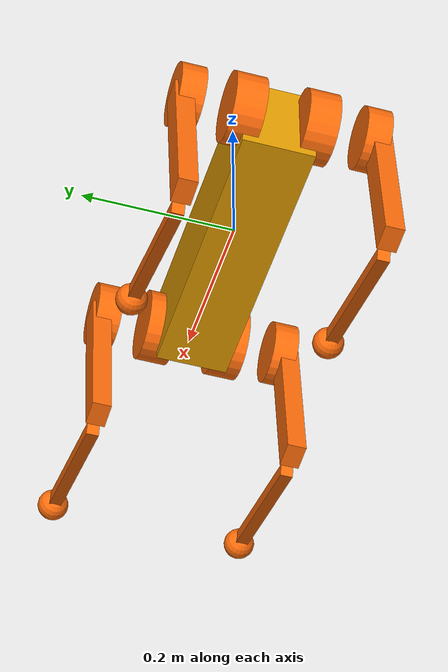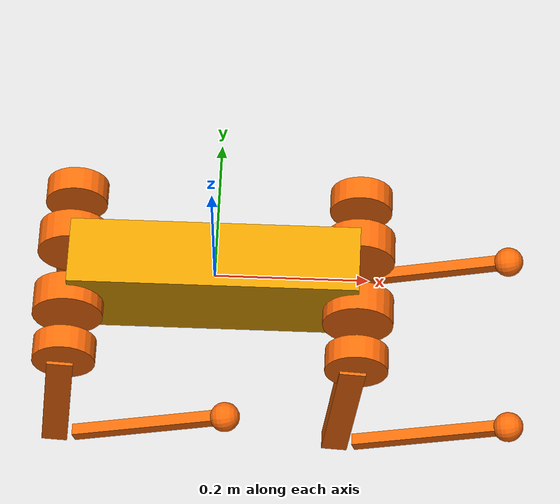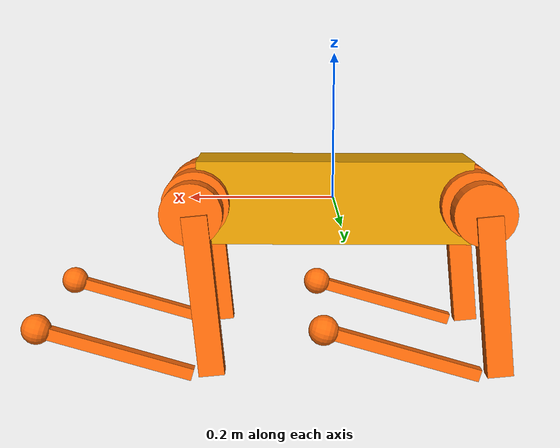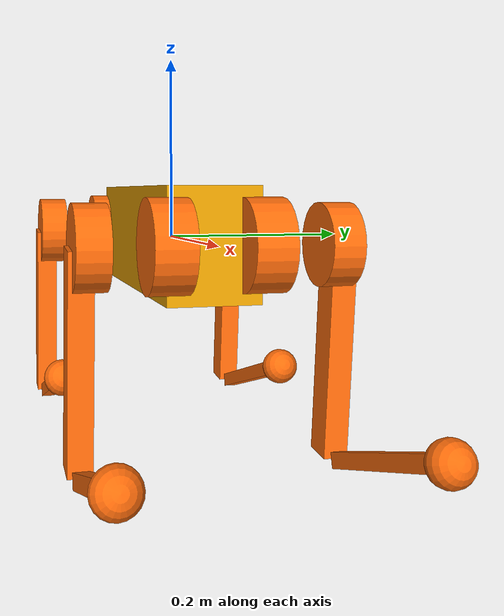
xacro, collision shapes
<?xml version="1.0"?>

<robot xmlns:xacro="http://www.ros.org/wiki/xacro" name="robot">

    <xacro:arg name="robot_type" default="go1"/>

    <xacro:include filename="./common/materials.xacro"/>
    <xacro:include filename="./common/leg.xacro"/>
    <xacro:include filename="./common/gazebo.xacro"/>
    <xacro:include filename="./common/imu.xacro"/>

    <xacro:include filename="./go1/const.xacro"/>

    <xacro:property name="mesh_path" value="../meshes"/>

    <link name="base">
        <visual>
            <origin rpy="0 0 0" xyz="0 0 0"/>
            <geometry>
                <mesh filename="${mesh_path}/trunk.stl" scale="1 1 1"/>
            </geometry>
        </visual>
        <collision>
            <origin rpy="0 0 0" xyz="0 0 0"/>
            <geometry>
                <box size="${trunk_length} ${trunk_width} ${trunk_height}"/>
            </geometry>
        </collision>
        <inertial>
            <origin rpy="0 0 0" xyz="${trunk_com_x} ${trunk_com_y} ${trunk_com_z}"/>
            <mass value="${trunk_mass}"/>
            <inertia
                    ixx="${trunk_ixx}" ixy="${trunk_ixy}" ixz="${trunk_ixz}"
                    iyy="${trunk_iyy}" iyz="${trunk_iyz}"
                    izz="${trunk_izz}"/>
        </inertial>
    </link>

    <xacro:IMU connected_to="base" imu_name="imu" xyz="0. 0. 0." rpy="0. 0. 0."/>

    <xacro:leg prefix="FL" mesh_path="${mesh_path}" mirror="1" mirror_dae="True" front_hind="1" front_hind_dae="True">
        <origin rpy="0 0 0" xyz="${leg_offset_x} ${leg_offset_y} 0"/>
    </xacro:leg>

    <xacro:leg prefix="RL" mesh_path="${mesh_path}" mirror="1" mirror_dae="True" front_hind="-1" front_hind_dae="False">
        <origin rpy="0 0 0" xyz="${-leg_offset_x} ${leg_offset_y} 0"/>
    </xacro:leg>

    <xacro:leg prefix="FR" mesh_path="${mesh_path}" mirror="-1" mirror_dae="False" front_hind="1" front_hind_dae="True">
        <origin rpy="0 0 0" xyz="${leg_offset_x} ${-leg_offset_y} 0"/>
    </xacro:leg>

    <xacro:leg prefix="RR" mesh_path="${mesh_path}" mirror="-1" mirror_dae="False" front_hind="-1" front_hind_dae="False">
        <origin rpy="0 0 0" xyz="${-leg_offset_x} ${-leg_offset_y} 0"/>
    </xacro:leg>

</robot>

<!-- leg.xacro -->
<robot xmlns:xacro="http://www.ros.org/wiki/xacro">

    <xacro:include filename="$(find legged_unitree_description)/urdf/common/transmission.xacro"/>

    <xacro:macro name="leg" params="prefix mesh_path mirror mirror_dae front_hind front_hind_dae *origin">

        <joint name="${prefix}_hip_joint" type="revolute">
            <xacro:insert_block name="origin"/>
            <parent link="base"/>
            <child link="${prefix}_hip"/>
            <axis xyz="1 0 0"/>
            <dynamics damping="${damping}" friction="${friction}"/>
            <xacro:if value="${(mirror_dae == True)}">
                <limit effort="${hip_torque_max}" velocity="${hip_velocity_max}" lower="${hip_position_min}"
                       upper="${hip_position_max}"/>
            </xacro:if>
            <xacro:if value="${(mirror_dae == False)}">
                <limit effort="${hip_torque_max}" velocity="${hip_velocity_max}" lower="${-hip_position_max}"
                       upper="${-hip_position_min}"/>
            </xacro:if>
        </joint>

        <link name="${prefix}_hip">
            <visual>
                <xacro:if value="${(mirror_dae == True) and (front_hind_dae == True)}">
                    <origin rpy="0 0 0" xyz="0 0 0"/>
                </xacro:if>
                <xacro:if value="${(mirror_dae == False) and (front_hind_dae == True)}">
                    <origin rpy="${pi} 0 0" xyz="0 0 0"/>
                </xacro:if>
                <xacro:if value="${(mirror_dae == True) and (front_hind_dae == False)}">
                    <origin rpy="0 ${pi} 0" xyz="0 0 0"/>
                </xacro:if>
                <xacro:if value="${(mirror_dae == False) and (front_hind_dae == False)}">
                    <origin rpy="${pi} ${pi} 0" xyz="0 0 0"/>
                </xacro:if>
                <geometry>
                    <mesh filename="${mesh_path}/hip.stl"
                          scale="1 1 1"/>
                </geometry>
                <material name="orange"/>
            </visual>
            <collision>
                <origin rpy="${pi/2.0} 0 0" xyz="0 0 0"/>
                <geometry>
                    <cylinder length="${hip_length}" radius="${hip_radius}"/>
                </geometry>
            </collision>
            <inertial>
                <origin rpy="0 0 0" xyz="${hip_com_x*front_hind} ${hip_com_y*mirror} ${hip_com_z}"/>
                <mass value="${hip_mass}"/>
                <inertia
                        ixx="${hip_ixx}" ixy="${hip_ixy*mirror*front_hind}" ixz="${hip_ixz*front_hind}"
                        iyy="${hip_iyy}" iyz="${hip_iyz*mirror}"
                        izz="${hip_izz}"/>
            </inertial>
        </link>

        <joint name="${prefix}_thigh_joint" type="revolute">
            <origin rpy="0 0 0" xyz="0 ${thigh_offset*mirror} 0"/>
            <parent link="${prefix}_hip"/>
            <child link="${prefix}_thigh"/>
            <axis xyz="0 1 0"/>
            <dynamics damping="${damping}" friction="${friction}"/>
            <limit effort="${thigh_torque_max}" velocity="${thigh_velocity_max}" lower="${thigh_position_min}"
                   upper="${thigh_position_max}"/>
        </joint>

        <link name="${prefix}_thigh">
            <visual>
                <origin rpy="0 0 0" xyz="0 0 0"/>
                <geometry>
                    <xacro:if value="${mirror_dae == True}">
                        <mesh filename="${mesh_path}/thigh.stl"
                              scale="1 1 1"/>
                    </xacro:if>
                    <xacro:if value="${mirror_dae == False}">
                        <mesh filename="${mesh_path}/thigh_mirror.stl"
                              scale="1 1 1"/>
                    </xacro:if>
                </geometry>
                <material name="orange"/>
            </visual>
            <collision>
                <origin rpy="0 ${pi/2.0+0.1} 0" xyz="${thigh_x_offset} 0 ${-thigh_length/2.0}"/>
                <geometry>
                    <box size="${thigh_length} ${thigh_width} ${thigh_height}"/>
                </geometry>
            </collision>
            <collision>
                <origin rpy="${pi/2.0} 0 0" xyz="0 ${mirror*thigh_shoulder_y_offset} 0"/>
                <geometry>
                    <cylinder length="${thigh_shoulder_length}" radius="${thigh_shoulder_radius}"/>
                </geometry>
            </collision>
            <inertial>
                <origin rpy="0 0 0" xyz="${thigh_com_x} ${thigh_com_y*mirror} ${thigh_com_z}"/>
                <mass value="${thigh_mass}"/>
                <inertia
                        ixx="${thigh_ixx}" ixy="${thigh_ixy*mirror}" ixz="${thigh_ixz}"
                        iyy="${thigh_iyy}" iyz="${thigh_iyz*mirror}"
                        izz="${thigh_izz}"/>
            </inertial>
        </link>

        <joint name="${prefix}_calf_joint" type="revolute">
            <origin rpy="0 0 0" xyz="0 0 ${-thigh_length}"/>
            <parent link="${prefix}_thigh"/>
            <child link="${prefix}_calf"/>
            <axis xyz="0 1 0"/>
            <dynamics damping="${damping}" friction="${friction}"/>
            <limit effort="${calf_torque_max}" velocity="${calf_velocity_max}" lower="${calf_position_min}" upper="${calf_position_max}"/>
        </joint>

        <link name="${prefix}_calf">
            <visual>
                <origin rpy="0 0 0" xyz="0 0 0"/>
                <geometry>
                    <mesh filename="${mesh_path}/calf.stl"
                          scale="1 1 1"/>
                </geometry>
                <material name="orange"/>
            </visual>
            <collision>
                <origin rpy="0 ${pi/2.0} 0" xyz="${calf_x_offset} 0 ${-calf_length/2.0}"/>
                <geometry>
                    <box size="${calf_length} ${calf_width} ${calf_height}"/>
                </geometry>
            </collision>
            <inertial>
                <origin rpy="0 0 0" xyz="${calf_com_x} ${calf_com_y} ${calf_com_z}"/>
                <mass value="${calf_mass}"/>
                <inertia
                        ixx="${calf_ixx}" ixy="${calf_ixy}" ixz="${calf_ixz}"
                        iyy="${calf_iyy}" iyz="${calf_iyz}"
                        izz="${calf_izz}"/>
            </inertial>
        </link>

        <joint name="${prefix}_foot_fixed" type="fixed" dont_collapse="true">
            <origin rpy="0 0 0" xyz="0 0 ${-(calf_length)}"/>
            <parent link="${prefix}_calf"/>
            <child link="${prefix}_foot"/>
        </joint>

        <link name="${prefix}_foot">
            <visual>
                <origin rpy="0 0 0" xyz="0 0 0"/>
                <geometry>
                    <sphere radius="${foot_radius-0.01}"/>
                </geometry>
                <material name="orange"/>
            </visual>
            <collision>
                <origin rpy="0 0 0" xyz="0 0 0"/>
                <geometry>
                    <sphere radius="${foot_radius}"/>
                </geometry>
            </collision>
            <inertial>
                <mass value="${foot_mass}"/>
                <inertia
                        ixx="${(2*foot_mass)/5.0*(foot_radius*foot_radius)}" ixy="0.0" ixz="0.0"
                        iyy="${(2*foot_mass)/5.0*(foot_radius*foot_radius)}" iyz="0.0"
                        izz="${(2*foot_mass)/5.0*(foot_radius*foot_radius)}"/>
            </inertial>
        </link>

        <gazebo reference="${prefix}_foot_fixed">
            <disableFixedJointLumping>true</disableFixedJointLumping>
        </gazebo>

        <gazebo reference="${prefix}_hip">
            <mu1>0.2</mu1>
            <mu2>0.2</mu2>
            <material>Gazebo/DarkGrey</material>
        </gazebo>
        <gazebo reference="${prefix}_thigh">
            <mu1>0.2</mu1>
            <mu2>0.2</mu2>
            <self_collide>0</self_collide>
            <material>Gazebo/DarkGrey</material>
            <kp value="1000000.0"/>
            <kd value="100.0"/>
        </gazebo>
        <gazebo reference="${prefix}_calf">
            <mu1>0.6</mu1>
            <mu2>0.6</mu2>
            <self_collide>1</self_collide>
        </gazebo>
        <gazebo reference="${prefix}_foot">
            <mu1>0.6</mu1>
            <mu2>0.6</mu2>
            <self_collide>1</self_collide>
            <material>Gazebo/DarkGrey</material>
            <kp value="1000000.0"/>
            <kd value="100.0"/>
        </gazebo>

        <xacro:leg_transmission name="${prefix}"/>
    </xacro:macro>
</robot>

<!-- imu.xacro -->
<robot xmlns:xacro="http://www.ros.org/wiki/xacro" name="imu">
    <xacro:macro name="IMU" params="connected_to imu_name xyz:='0 0 0' rpy:='0 0 0' ">
        <!-- Imu is fixed to the base link -->
        <joint name="${imu_name}_joint" type="fixed">
            <origin xyz="${xyz}" rpy="${rpy}"/>
            <parent link="${connected_to}"/>
            <child link="${imu_name}"/>
        </joint>
        <!-- Imu link -->
        <link name="${imu_name}">
            <inertial>
                <mass value="0.01"/>
                <origin rpy="0 0 0" xyz="0 0 0"/>
                <inertia ixx="0.000001" ixy="0" ixz="0" iyy="0.000001" iyz="0" izz="0.000001"/>
            </inertial>
            <visual>
                <origin rpy="0 0 0" xyz="0 0 0"/>
                <geometry>
                    <box size="0.015 0.015 0.004"/>
                </geometry>
            </visual>
            <material name="orange">
                <color rgba="255 108 10 255"/>
            </material>
        </link>
        <gazebo reference="${imu_name}">
            <material>Gazebo/Orange</material>
        </gazebo>
        <gazebo reference="${imu_name}_joint">
            <disableFixedJointLumping>true</disableFixedJointLumping>
        </gazebo>
        <!-- Imu sensor -->
        <gazebo reference="${imu_name}">
        <gravity>true</gravity>
        <sensor name="${imu_name}_sensor" type="imu">
            <always_on>true</always_on>
            <update_rate>1000</update_rate>
            <visualize>true</visualize>
            <topic>__default_topic__</topic>
            <plugin filename="libgazebo_ros_imu_sensor.so" name="imu_plugin">
                <topicName>trunk_imu</topicName>
                <bodyName>${imu_name}</bodyName>
                <updateRateHZ>1000.0</updateRateHZ>
                <gaussianNoise>0.0</gaussianNoise>
                <xyzOffset>0 0 0</xyzOffset>
                <rpyOffset>0 0 0</rpyOffset>
                <frameName>${imu_name}</frameName>
            </plugin>
            <pose>0 0 0 0 0 0</pose>
        </sensor>
    </gazebo>
    </xacro:macro>
</robot>

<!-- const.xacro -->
<robot xmlns:xacro="http://www.ros.org/wiki/xacro">

    <!-- Constants for robot dimensions -->
    <xacro:property name="PI" value="3.1415926535897931"/>

    <!-- simplified collision value -->
    <xacro:property name="trunk_width" value="0.0935"/>
    <xacro:property name="trunk_length" value="0.3762"/>
    <xacro:property name="trunk_height" value="0.114"/>
    <xacro:property name="hip_radius" value="0.046"/>
    <xacro:property name="hip_length" value="0.04"/>
    <xacro:property name="thigh_shoulder_radius" value="0.041"/>
    <xacro:property name="thigh_shoulder_length" value="0.032"/>

    <xacro:property name="thigh_shoulder_y_offset" value="-0.008"/>

    <xacro:property name="thigh_width" value="0.0245"/>
    <xacro:property name="thigh_height" value="0.034"/>
    <xacro:property name="thigh_x_offset" value="-0.015"/>
    <xacro:property name="calf_width" value="0.016"/>
    <xacro:property name="calf_height" value="0.016"/>
    <xacro:property name="calf_x_offset" value="0.0"/>
    <xacro:property name="foot_radius" value="0.02"/>

    <!-- kinematic value -->
    <xacro:property name="thigh_offset" value="0.08"/>
    <xacro:property name="thigh_length" value="0.213"/>
    <xacro:property name="calf_length" value="0.213"/>

    <!-- leg offset from trunk center value -->
    <xacro:property name="leg_offset_x" value="0.1881"/>
    <xacro:property name="leg_offset_y" value="0.04675"/>
    <xacro:property name="hip_offset" value="0.08"/>

    <!-- offset of link and rotor locations (left front) -->
    <xacro:property name="hip_offset_x" value="0.1881"/>
    <xacro:property name="hip_offset_y" value="0.04675"/>
    <xacro:property name="hip_offset_z" value="0.0"/>
    <xacro:property name="hip_rotor_offset_x" value="0.11215"/>
    <xacro:property name="hip_rotor_offset_y" value="0.04675"/>
    <xacro:property name="hip_rotor_offset_z" value="0.0"/>

    <xacro:property name="thigh_offset_x" value="0"/>
    <xacro:property name="thigh_offset_y" value="0.08"/>
    <xacro:property name="thigh_offset_z" value="0.0"/>
    <xacro:property name="thigh_rotor_offset_x" value="0.0"/>
    <xacro:property name="thigh_rotor_offset_y" value="-0.00015"/>
    <xacro:property name="thigh_rotor_offset_z" value="0.0"/>

    <xacro:property name="calf_offset_x" value="0.0"/>
    <xacro:property name="calf_offset_y" value="0.0"/>
    <xacro:property name="calf_offset_z" value="-0.213"/>
    <xacro:property name="calf_rotor_offset_x" value="0.0"/>
    <xacro:property name="calf_rotor_offset_y" value="-0.03235"/>
    <xacro:property name="calf_rotor_offset_z" value="0.0"/>

    <!-- joint limits 0.01 0.2-->
    <xacro:property name="damping" value="0.0"/>
    <xacro:property name="friction" value="0.0"/>
    <xacro:property name="hip_position_max" value="0.863"/>
    <xacro:property name="hip_position_min" value="-0.863"/>
    <xacro:property name="hip_velocity_max" value="30.1"/>
    <xacro:property name="hip_torque_max" value="23.7"/>
    <xacro:property name="thigh_position_max" value="4.501"/>
    <xacro:property name="thigh_position_min" value="-0.686"/>
    <xacro:property name="thigh_velocity_max" value="30.1"/>
    <xacro:property name="thigh_torque_max" value="23.7"/>
    <xacro:property name="calf_position_max" value="-0.888"/>
    <xacro:property name="calf_position_min" value="-2.818"/>
    <xacro:property name="calf_velocity_max" value="20.06"/>
    <xacro:property name="calf_torque_max" value="35.55"/>

    <!-- dynamics inertial value        total 12.84kg -->
    <!-- trunk -->
    <xacro:property name="trunk_mass" value="5.204"/>
    <xacro:property name="trunk_com_x" value="0.0223"/>
    <xacro:property name="trunk_com_y" value="0.002"/>
    <xacro:property name="trunk_com_z" value="-0.0005"/>
    <xacro:property name="trunk_ixx" value="0.0168128557"/>
    <xacro:property name="trunk_ixy" value="-0.0002296769"/>
    <xacro:property name="trunk_ixz" value="-0.0002945293"/>
    <xacro:property name="trunk_iyy" value="0.063009565"/>
    <xacro:property name="trunk_iyz" value="-0.0000418731"/>
    <xacro:property name="trunk_izz" value="0.0716547275"/>

    <!-- hip (left front) -->
    <xacro:property name="hip_mass" value="0.591"/>
    <xacro:property name="hip_com_x" value="-0.005657"/>
    <xacro:property name="hip_com_y" value="-0.008752"/>
    <xacro:property name="hip_com_z" value="-0.000102"/>
    <xacro:property name="hip_ixx" value="0.000334008405"/>
    <xacro:property name="hip_ixy" value="-0.000010826066"/>
    <xacro:property name="hip_ixz" value="0.000001290732"/>
    <xacro:property name="hip_iyy" value="0.000619101213"/>
    <xacro:property name="hip_iyz" value="0.000001643194"/>
    <xacro:property name="hip_izz" value="0.00040057614"/>

    <!-- thigh -->
    <xacro:property name="thigh_mass" value="0.92"/>
    <xacro:property name="thigh_com_x" value="-0.003342"/>
    <xacro:property name="thigh_com_y" value="-0.018054"/>
    <xacro:property name="thigh_com_z" value="-0.033451"/>
    <xacro:property name="thigh_ixx" value="0.004431760472"/>
    <xacro:property name="thigh_ixy" value="0.000057496807"/>
    <xacro:property name="thigh_ixz" value="-0.000218457134"/>
    <xacro:property name="thigh_iyy" value="0.004485671726"/>
    <xacro:property name="thigh_iyz" value="0.000572001265"/>
    <xacro:property name="thigh_izz" value="0.000740309489"/>

    <!-- calf -->
    <xacro:property name="calf_mass" value="0.135862"/>
    <xacro:property name="calf_com_x" value="0.006197"/>
    <xacro:property name="calf_com_y" value="0.001408"/>
    <xacro:property name="calf_com_z" value="-0.116695"/>
    <xacro:property name="calf_ixx" value="0.001088793059"/>
    <xacro:property name="calf_ixy" value="-0.000000255679"/>
    <xacro:property name="calf_ixz" value="0.000007117814"/>
    <xacro:property name="calf_iyy" value="0.001100428748"/>
    <xacro:property name="calf_iyz" value="0.000002077264"/>
    <xacro:property name="calf_izz" value="0.000024787446"/>

    <!-- foot -->
    <xacro:property name="foot_mass" value="0.06"/>

</robot>
